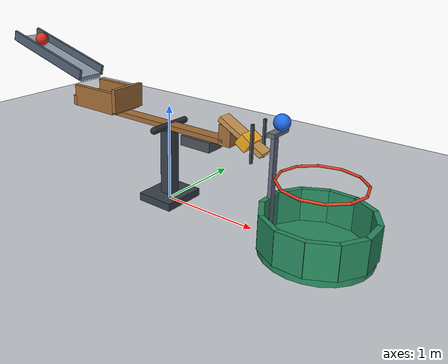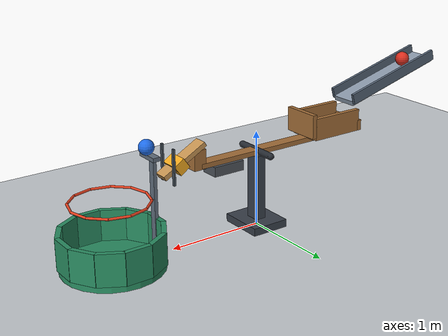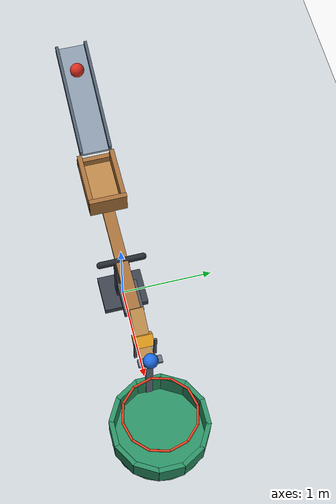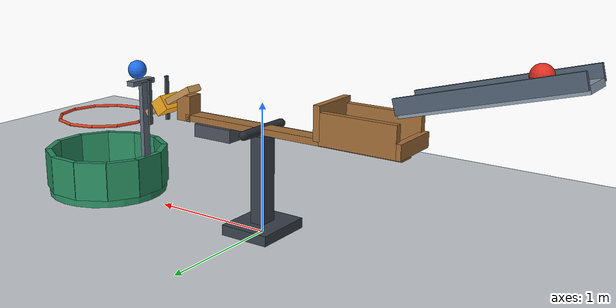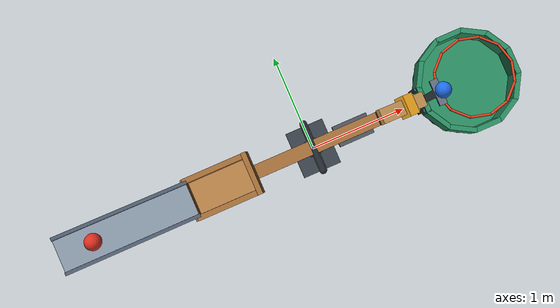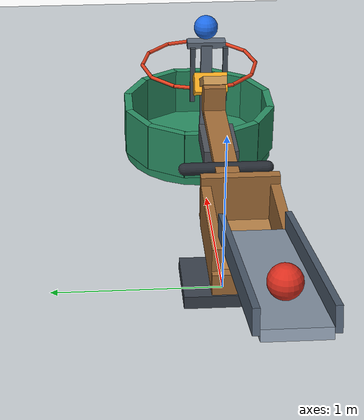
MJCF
<mujoco model="ramp_balance_hoop_cup">
  <compiler angle="radian"/>
  <option timestep="0.002" gravity="0 0 -9.81" integrator="implicitfast" iterations="80"/>
  <size njmax="2000" nconmax="400"/>

  <visual>
    <headlight ambient="0.35 0.35 0.35" diffuse="0.7 0.7 0.7" specular="0.2 0.2 0.2"/>
    <map znear="0.01"/>
  </visual>

  <worldbody>
    <light name="main_light" pos="-1 -3 5" dir="0.2 0.4 -1"/>
    <camera name="overview" pos="0 -5.8 3.3" xyaxes="1 0 0 0 0.40 0.9165"/>

    <geom name="floor" type="plane" size="6 4 0.1" pos="0 0 0" rgba="0.78 0.80 0.82 1" friction="0.9 0.01 0.025" condim="6"/>

    <!-- The starting point is 0.9 m along the inclined surface from its lower end. -->
    <body name="ramp" pos="-1.736027 0 1.261143" euler="0 0.261799388 0">
      <geom name="ramp_surface" type="box" size="0.60 0.14 0.025" rgba="0.55 0.61 0.68 1" friction="0.7 0.005 0.0001" condim="6"/>
      <geom name="ramp_left_rail" type="box" pos="0 0.155 0.055" size="0.60 0.015 0.055" rgba="0.32 0.38 0.45 1" friction="0.7 0.005 0.0001" condim="6"/>
      <geom name="ramp_right_rail" type="box" pos="0 -0.155 0.055" size="0.60 0.015 0.055" rgba="0.32 0.38 0.45 1" friction="0.7 0.005 0.0001" condim="6"/>
    </body>

    <body name="ball1" pos="-1.999922 0 1.435382">
      <freejoint name="ball1_free"/>
      <geom name="ball1_sphere" type="sphere" size="0.075" mass="2.0" rgba="0.85 0.18 0.12 1" friction="0.8 0.005 0.001" condim="6" solref="0.008 1"/>
    </body>

    <body name="balance_support" pos="0 0 0">
      <geom name="balance_support_base" type="box" pos="0 0 0.04" size="0.20 0.24 0.04" rgba="0.22 0.25 0.29 1" contype="0" conaffinity="0"/>
      <geom name="balance_support_column" type="box" pos="0 0 0.40" size="0.055 0.075 0.36" rgba="0.22 0.25 0.29 1" contype="0" conaffinity="0"/>
      <geom name="balance_support_axle" type="capsule" fromto="0 -0.23 0.8 0 0.23 0.8" size="0.035" rgba="0.15 0.17 0.20 1" contype="0" conaffinity="0"/>
    </body>

    <!-- Positive hinge angle lowers the striker end; ball1 drives it to -0.25 rad. -->
    <body name="balance" pos="0 0 0.8">
      <inertial pos="0.22 0 0.03" mass="1.0" diaginertia="0.014 0.25 0.25"/>
      <joint name="balance_hinge" type="hinge" axis="0 1 0" limited="true" range="-0.25 0.12" damping="20" armature="0.002" solreflimit="0.01 1" solimplimit="0.99 0.99 0.001"/>
      <geom name="balance_beam" type="box" pos="-0.24 0 0" size="0.93 0.065 0.025" rgba="0.64 0.43 0.22 1" friction="0.55 0.005 0.001" condim="6"/>
      <geom name="balance_recess_floor" type="box" pos="-0.90 0 0.035" size="0.29 0.15 0.015" rgba="0.72 0.51 0.28 1" friction="0.65 0.005 0.001" condim="6"/>
      <geom name="balance_recess_outer_wall" type="box" pos="-1.20 0 0.08" size="0.025 0.20 0.055" rgba="0.64 0.43 0.22 1" friction="0.65 0.005 0.001" condim="6"/>
      <geom name="balance_recess_inner_wall" type="box" pos="-0.59 0 0.175" size="0.025 0.20 0.125" rgba="0.64 0.43 0.22 1" friction="0.65 0.005 0.001" condim="6"/>
      <geom name="balance_recess_front_wall" type="box" pos="-0.90 -0.175 0.14" size="0.29 0.025 0.115" rgba="0.64 0.43 0.22 1" friction="0.65 0.005 0.001" condim="6"/>
      <geom name="balance_recess_back_wall" type="box" pos="-0.90 0.175 0.14" size="0.29 0.025 0.115" rgba="0.64 0.43 0.22 1" friction="0.65 0.005 0.001" condim="6"/>
      <geom name="balance_counterweight" type="box" pos="0.40 0 -0.075" size="0.17 0.10 0.05" rgba="0.30 0.32 0.35 1" friction="0.55 0.005 0.001" condim="6"/>
      <geom name="balance_striker_ramp_brace" type="box" pos="0.71 0 0.07" size="0.065 0.065 0.10" rgba="0.64 0.43 0.22 1" friction="0.28 0.005 0.001" condim="6"/>
      <geom name="balance_striker_ramp" type="box" pos="0.878014 0 0.098060" euler="0 0.50 0" size="0.26 0.07 0.025" rgba="0.78 0.58 0.32 1" friction="0.28 0.005 0.001" condim="6"/>
    </body>

    <!-- These posts retain the block until the balance lifts it clear. -->
    <body name="striker_gate" pos="0 0 0">
      <geom name="striker_gate_front" type="box" pos="1.027 -0.10 0.88" size="0.01 0.015 0.18" rgba="0.28 0.32 0.36 1" friction="0.15 0.003 0.0001" condim="6"/>
      <geom name="striker_gate_back" type="box" pos="1.027 0.10 0.88" size="0.01 0.015 0.18" rgba="0.28 0.32 0.36 1" friction="0.15 0.003 0.0001" condim="6"/>
    </body>

    <body name="block" pos="0.932827 0 0.861424" euler="0 0.62 0">
      <freejoint name="block_free"/>
      <geom name="block_box" type="box" size="0.06 0.10 0.06" mass="0.20" rgba="0.95 0.66 0.12 1" friction="0.28 0.005 0.001" condim="6" solref="0.008 1"/>
    </body>

    <!-- The ball is only 4 mm behind the shelf's release edge. -->
    <body name="ball2_support" pos="0 0 0">
      <geom name="ball2_support_shelf" type="box" pos="1.217 0 1.005" size="0.037 0.12 0.02" rgba="0.38 0.43 0.49 1" friction="0.35 0.005 0.0001" condim="6"/>
      <geom name="ball2_support_post" type="box" pos="1.19 0 0.5025" size="0.018 0.035 0.5025" rgba="0.38 0.43 0.49 1" friction="0.35 0.005 0.0001" condim="6"/>
    </body>

    <body name="ball2" pos="1.25 0 1.10">
      <freejoint name="ball2_free"/>
      <geom name="ball2_sphere" type="sphere" size="0.075" mass="0.065" rgba="0.12 0.42 0.90 1" friction="0.5 0.005 0.008" condim="6" solref="0.008 1"/>
    </body>

    <body name="hoop" pos="1.65 0 0.66">
      <geom name="hoop_segment_01" type="capsule" fromto="0.38 0 0 0.329090 0.19 0" size="0.012" rgba="0.90 0.25 0.12 1" friction="0.5 0.005 0.008" condim="6"/>
      <geom name="hoop_segment_02" type="capsule" fromto="0.329090 0.19 0 0.19 0.329090 0" size="0.012" rgba="0.90 0.25 0.12 1" friction="0.5 0.005 0.008" condim="6"/>
      <geom name="hoop_segment_03" type="capsule" fromto="0.19 0.329090 0 0 0.38 0" size="0.012" rgba="0.90 0.25 0.12 1" friction="0.5 0.005 0.008" condim="6"/>
      <geom name="hoop_segment_04" type="capsule" fromto="0 0.38 0 -0.19 0.329090 0" size="0.012" rgba="0.90 0.25 0.12 1" friction="0.5 0.005 0.008" condim="6"/>
      <geom name="hoop_segment_05" type="capsule" fromto="-0.19 0.329090 0 -0.329090 0.19 0" size="0.012" rgba="0.90 0.25 0.12 1" friction="0.5 0.005 0.008" condim="6"/>
      <geom name="hoop_segment_06" type="capsule" fromto="-0.329090 0.19 0 -0.38 0 0" size="0.012" rgba="0.90 0.25 0.12 1" friction="0.5 0.005 0.008" condim="6"/>
      <geom name="hoop_segment_07" type="capsule" fromto="-0.38 0 0 -0.329090 -0.19 0" size="0.012" rgba="0.90 0.25 0.12 1" friction="0.5 0.005 0.008" condim="6"/>
      <geom name="hoop_segment_08" type="capsule" fromto="-0.329090 -0.19 0 -0.19 -0.329090 0" size="0.012" rgba="0.90 0.25 0.12 1" friction="0.5 0.005 0.008" condim="6"/>
      <geom name="hoop_segment_09" type="capsule" fromto="-0.19 -0.329090 0 0 -0.38 0" size="0.012" rgba="0.90 0.25 0.12 1" friction="0.5 0.005 0.008" condim="6"/>
      <geom name="hoop_segment_10" type="capsule" fromto="0 -0.38 0 0.19 -0.329090 0" size="0.012" rgba="0.90 0.25 0.12 1" friction="0.5 0.005 0.008" condim="6"/>
      <geom name="hoop_segment_11" type="capsule" fromto="0.19 -0.329090 0 0.329090 -0.19 0" size="0.012" rgba="0.90 0.25 0.12 1" friction="0.5 0.005 0.008" condim="6"/>
      <geom name="hoop_segment_12" type="capsule" fromto="0.329090 -0.19 0 0.38 0 0" size="0.012" rgba="0.90 0.25 0.12 1" friction="0.5 0.005 0.008" condim="6"/>
    </body>

    <body name="cup" pos="1.65 0 0">
      <geom name="cup_bottom" type="cylinder" pos="0 0 0.04" size="0.50 0.03" rgba="0.16 0.55 0.38 1" friction="0.9 0.01 0.025" condim="6" solref="0.01 1"/>
      <geom name="cup_wall_01" type="box" pos="0.475 0 0.23" size="0.025 0.132 0.16" rgba="0.16 0.55 0.38 1" friction="0.9 0.01 0.025" condim="6"/>
      <geom name="cup_wall_02" type="box" pos="0.411362 0.2375 0.23" euler="0 0 0.523599" size="0.025 0.132 0.16" rgba="0.16 0.55 0.38 1" friction="0.9 0.01 0.025" condim="6"/>
      <geom name="cup_wall_03" type="box" pos="0.2375 0.411362 0.23" euler="0 0 1.047198" size="0.025 0.132 0.16" rgba="0.16 0.55 0.38 1" friction="0.9 0.01 0.025" condim="6"/>
      <geom name="cup_wall_04" type="box" pos="0 0.475 0.23" euler="0 0 1.570796" size="0.025 0.132 0.16" rgba="0.16 0.55 0.38 1" friction="0.9 0.01 0.025" condim="6"/>
      <geom name="cup_wall_05" type="box" pos="-0.2375 0.411362 0.23" euler="0 0 2.094395" size="0.025 0.132 0.16" rgba="0.16 0.55 0.38 1" friction="0.9 0.01 0.025" condim="6"/>
      <geom name="cup_wall_06" type="box" pos="-0.411362 0.2375 0.23" euler="0 0 2.617994" size="0.025 0.132 0.16" rgba="0.16 0.55 0.38 1" friction="0.9 0.01 0.025" condim="6"/>
      <geom name="cup_wall_07" type="box" pos="-0.475 0 0.23" euler="0 0 3.141593" size="0.025 0.132 0.16" rgba="0.16 0.55 0.38 1" friction="0.9 0.01 0.025" condim="6"/>
      <geom name="cup_wall_08" type="box" pos="-0.411362 -0.2375 0.23" euler="0 0 3.665191" size="0.025 0.132 0.16" rgba="0.16 0.55 0.38 1" friction="0.9 0.01 0.025" condim="6"/>
      <geom name="cup_wall_09" type="box" pos="-0.2375 -0.411362 0.23" euler="0 0 4.188790" size="0.025 0.132 0.16" rgba="0.16 0.55 0.38 1" friction="0.9 0.01 0.025" condim="6"/>
      <geom name="cup_wall_10" type="box" pos="0 -0.475 0.23" euler="0 0 4.712389" size="0.025 0.132 0.16" rgba="0.16 0.55 0.38 1" friction="0.9 0.01 0.025" condim="6"/>
      <geom name="cup_wall_11" type="box" pos="0.2375 -0.411362 0.23" euler="0 0 5.235988" size="0.025 0.132 0.16" rgba="0.16 0.55 0.38 1" friction="0.9 0.01 0.025" condim="6"/>
      <geom name="cup_wall_12" type="box" pos="0.411362 -0.2375 0.23" euler="0 0 5.759587" size="0.025 0.132 0.16" rgba="0.16 0.55 0.38 1" friction="0.9 0.01 0.025" condim="6"/>
    </body>
  </worldbody>

  <keyframe>
    <key name="start" qpos="-1.999922 0 1.435382 1 0 0 0 0.12 0.932827 0 0.861424 0.952333570 0 0.305058636 0 1.25 0 1.10 1 0 0 0"/>
  </keyframe>
</mujoco>
